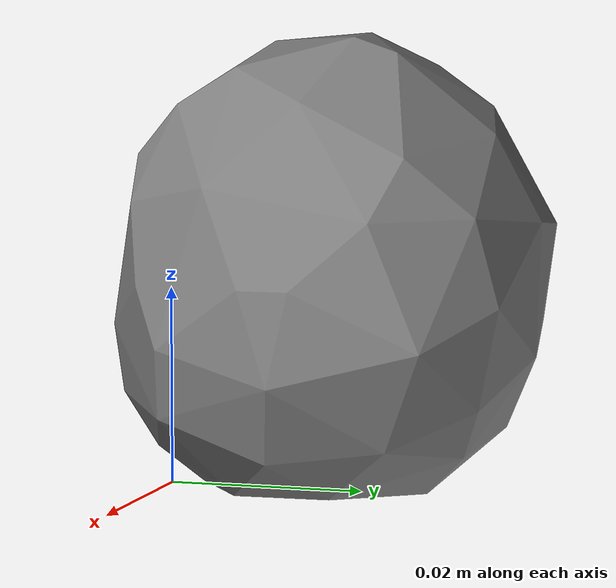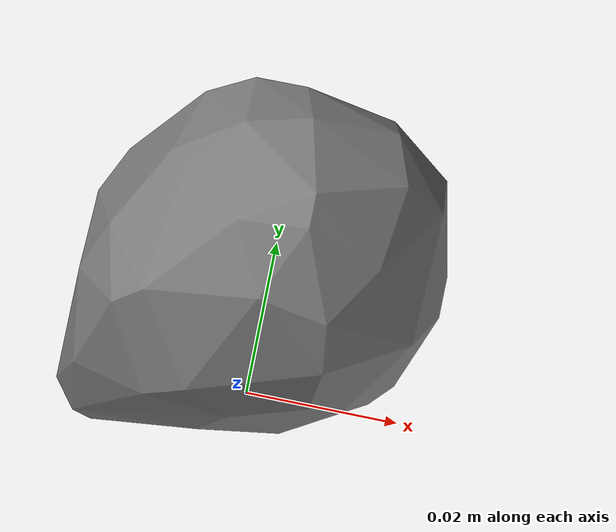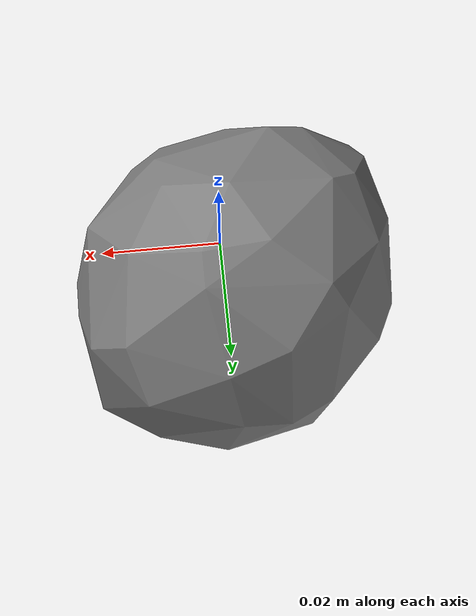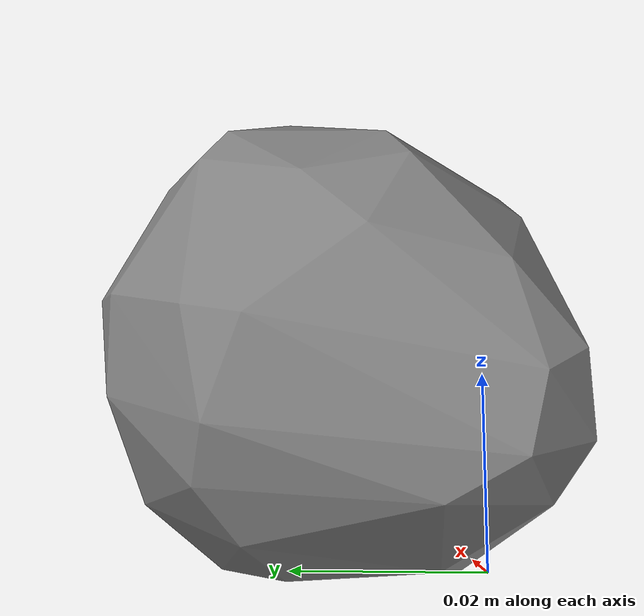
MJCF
<mujoco model="textured_vhacd">
  <default>
    <default class="visual">
      <geom group="2" type="mesh" contype="0" conaffinity="0"/>
    </default>
    <default class="collision">
      <geom group="3" type="mesh"/>
    </default>
  </default>
  <asset>
    <mesh file="textured_vhacd.obj"/>
  </asset>
  <worldbody>
    <body name="textured_vhacd">
      <geom mesh="textured_vhacd" class="visual"/>
      <geom mesh="textured_vhacd" class="collision"/>
    </body>
  </worldbody>
</mujoco>
